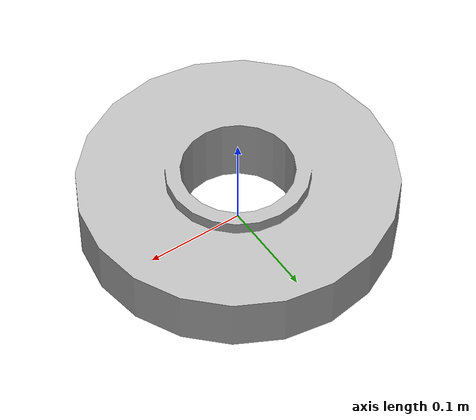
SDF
<?xml version="1.0" ?>
<sdf version="1.6">
  <model name="disk_part">
    <link name="link">
      <inertial>
        <pose>0 0 0.02895 0 0 0</pose>
        <mass>0.5</mass>
        <inertia>
          <ixx>0.0032121798</ixx>
          <ixy>0</ixy>
          <ixz>0</ixz>
          <iyy>0.0032121798</iyy>
          <iyz>0</iyz>
          <izz>0.0061449921</izz>
        </inertia>
      </inertial>

      <collision name="collision">
        <pose>0 0 0.02895 0 0 0</pose>
        <geometry>
          <cylinder>
            <length>0.0579</length>
            <radius>0.15678</radius>
          </cylinder>
        </geometry>
      </collision>

      <visual name="visual">
         <geometry>
           <mesh>
             <uri>model://disk_part/meshes/disk.dae</uri>
           </mesh>
         </geometry>
        <material>
          <script>
            <uri>model://arm_part/materials/scripts</uri>
            <uri>model://arm_part/materials/textures</uri>
            <name>ArmPart/Diffuse</name>
          </script>
        </material>
       </visual>
    </link>
  </model>
</sdf>
